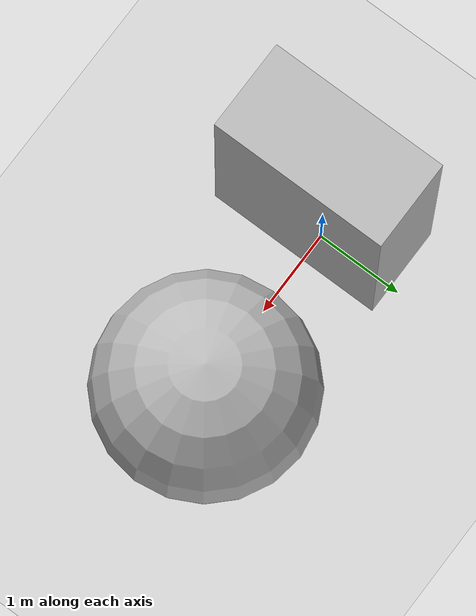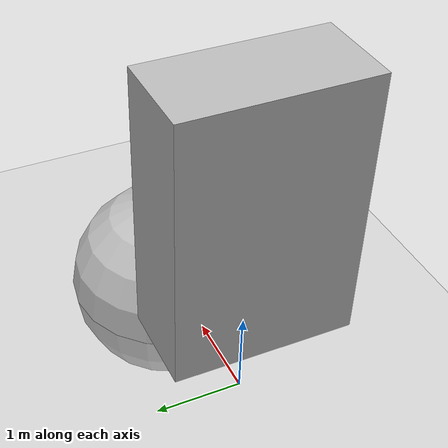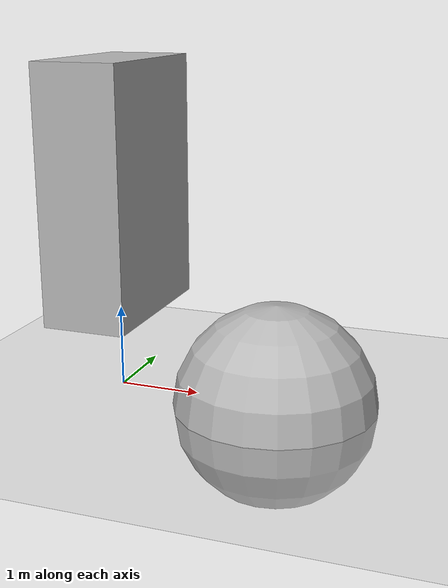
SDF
<sdf version="1.11">
 <world name="shapes_world">
  <model name="ground_plane">
   <static>true</static>
   <link name="link">
    <collision name="collision">
     <geometry><plane><normal>0 0 1</normal><size>1.4 6.3</size></plane></geometry>
    </collision>
    <visual name="visual"><geometry><plane><normal>0 0 1</normal><size>2 4</size></plane></geometry></visual>
   </link>
  </model>
  <model name="box">
   <pose relative_to="ground_plane">0 0 2.5 0 0 0</pose>
   <link name="link">
    <collision name="collision">
     <geometry><box><size>1 2 3</size></box></geometry>
     <surface><contact><collide_bitmask>0xAB</collide_bitmask></contact></surface>
    </collision>
    <visual name="box_vis"><geometry><box><size>1 2 3</size></box></geometry></visual>
   </link>
  </model>
  <model name="cylinder">
   <pose relative_to="box">2 0 0 0 0 0</pose>
   <link name="link">
    <collision name="collision">
     <geometry><cylinder><radius>0.2</radius><length>0.1</length></cylinder></geometry>
    </collision>
    <visual name="visual">
     <geometry><cylinder><radius>0.2</radius><length>0.1</length></cylinder></geometry>
    </visual>
   </link>
  </model>
  <model name="sphere">
   <pose relative_to="cylinder">2 0 0 0 0 0</pose>
   <link name="link">
    <collision name="collision"><geometry><sphere><radius>1.23</radius></sphere></geometry></collision>
    <visual name="sphere_vis"><geometry><sphere><radius>1.23</radius></sphere></geometry></visual>
   </link>
  </model>
  <model name="capsule">
   <pose relative_to="sphere">2 0 0 0 0 0</pose>
   <link name="link">
    <collision name="collision">
     <geometry><capsule><radius>0.2</radius><length>0.1</length></capsule></geometry>
    </collision>
    <visual name="visual">
     <geometry><capsule><radius>0.2</radius><length>0.1</length></capsule></geometry>
     <material><diffuse>0 0.1 0.2</diffuse><emissive>0.12 0.23 0.34 0.56</emissive></material>
    </visual>
   </link>
  </model>
  <model name="cone">
   <pose relative_to="mesh">2 0 0 0 0 0</pose>
   <link name="link">
    <collision name="collision">
     <geometry><cone><radius>0.2</radius><length>0.1</length></cone></geometry>
    </collision>
    <visual name="visual"><geometry><cone><radius>0.2</radius><length>0.1</length></cone></geometry></visual>
   </link>
  </model>
 </world>
</sdf>
